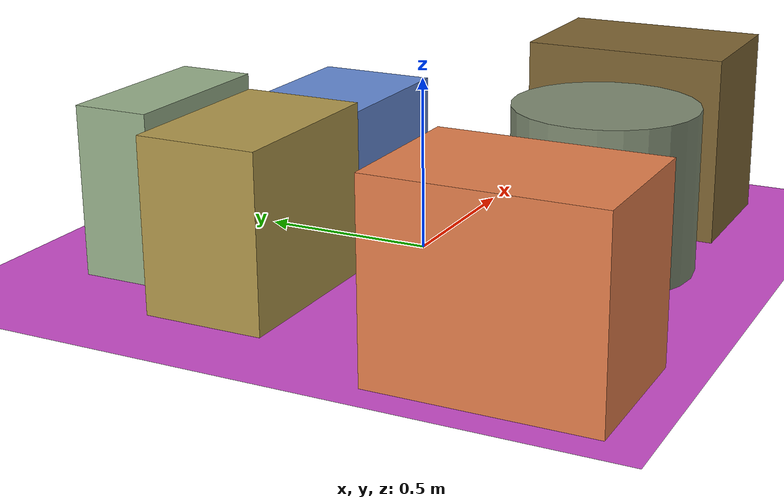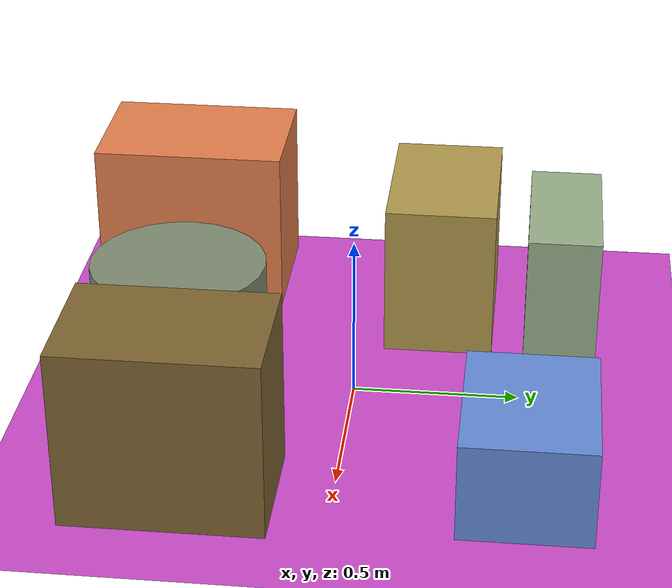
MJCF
<mujoco>
   <asset>
<texture type="skybox" builtin="gradient" rgb1="0.8 0.0 0.2" rgb2="0.8 0.3 0.1" width="256" height="256"/>
<texture name="gradient_0" builtin="gradient" rgb1="0.8 0.9 0.2" rgb2="0.2 0.2 0.7" width="200" height="200"/>
<texture name="flat_1" builtin="flat" rgb1="0.7 0.6 0.3" rgb2="0.7 0.6 0.3"  width="200" height="200"/>
<texture name="checker_2" builtin="checker" type="2d" rgb1="0.2 1.0 0.8" rgb2="0.6 0.1 0.9" width="200" height="200"/>
<texture name="flat_3" builtin="flat" rgb1="0.9 0.5 0.3" rgb2="0.9 0.5 0.3"  width="200" height="200"/>
<texture name="gradient_4" builtin="gradient" rgb1="1.0 0.7 0.9" rgb2="0.2 0.7 0.2" width="200" height="200"/>
<texture name="flat_5" builtin="flat" rgb1="0.5 0.4 0.2" rgb2="0.5 0.4 0.2"  width="200" height="200"/><material name="gradient_0_mat" reflectance="0" texture="gradient_0" texuniform="true"/>
<material name="flat_1_mat" reflectance="0" texture="flat_1" texuniform="true"/>
<material name="checker_2_mat" reflectance="0" texrepeat="5 5" texture="checker_2" texuniform="false" />
<material name="flat_3_mat" reflectance="0" texture="flat_3" texuniform="true"/>
<material name="gradient_4_mat" reflectance="0" texture="gradient_4" texuniform="true"/>
<material name="flat_5_mat" reflectance="0" texture="flat_5" texuniform="true"/>
   </asset>

   <worldbody>
      <light diffuse=".9 .9 .9" pos="0 0 3" dir="0 0 -1"/>
     <geom type="plane" size="1 1 0.1" rgba="0.8 0.3 0.8 1"/>
<geom type="cylinder" pos="0.09 -0.51 0.23" size="0.26 0.23 0.23" material="gradient_0_mat" />
<geom type="box" pos="-0.51 0.24 0.24" size="0.26 0.17 0.24" material="flat_1_mat" />
<geom type="box" pos="0.49 0.54 0.15" size="0.25 0.19 0.15" material="checker_2_mat" />
<geom type="box" pos="-0.71 -0.59 0.26" size="0.21 0.3 0.26" material="flat_3_mat" />
<geom type="box" pos="-0.35 0.62 0.24" size="0.25 0.11 0.24" material="gradient_4_mat" />
<geom type="box" pos="0.59 -0.45 0.27" size="0.2 0.29 0.27" material="flat_5_mat" /><camera euler="60 0 180" fovy="60" name="camera_a" pos="0 -1.5 1"></camera>   </worldbody>
</mujoco>
